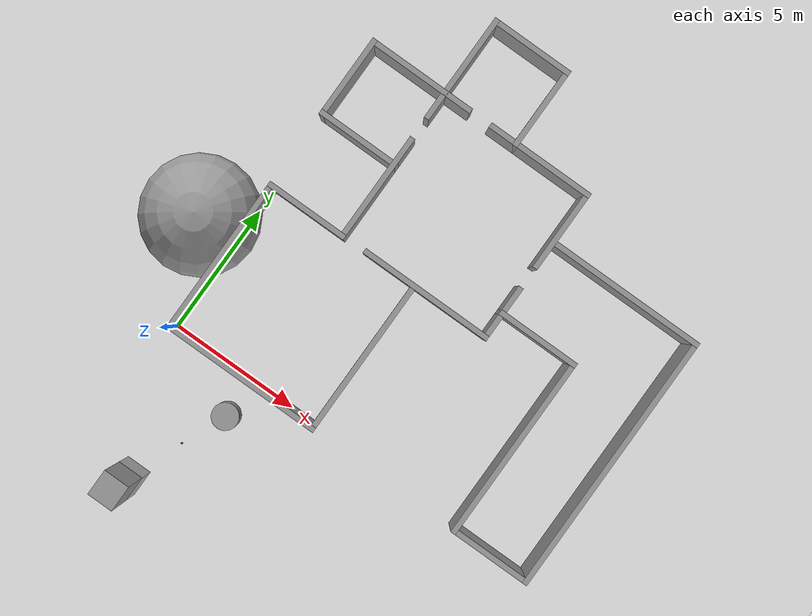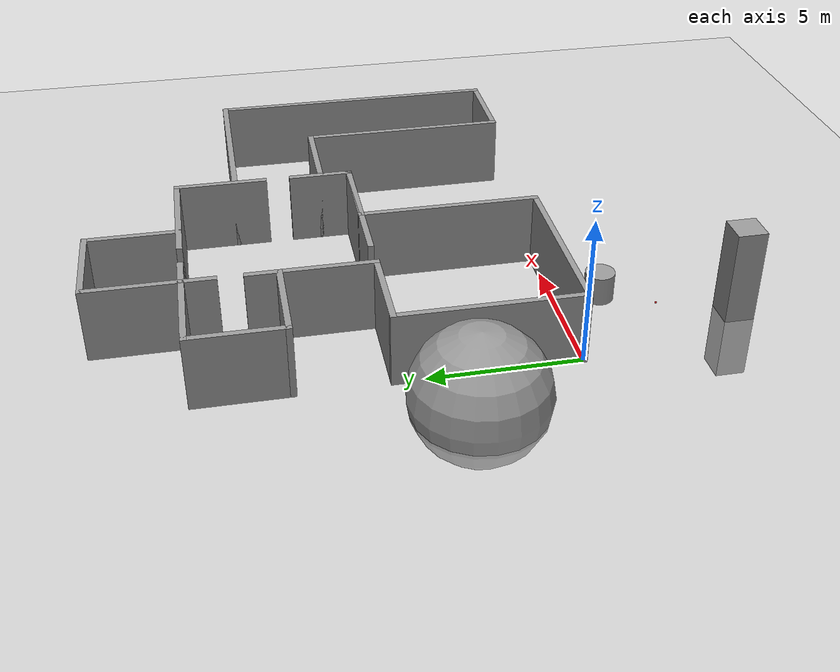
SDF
<sdf version="1.6">
 <world name="default">
  <light name="sun" type="directional">
   <pose>0 0 10 0 -0 0</pose>
   <diffuse>0.8 0.8 0.8 1</diffuse>
   <specular>0.2 0.2 0.2 1</specular>
   <attenuation>
    <range>1000</range>
    <constant>0.9</constant>
    <linear>0.01</linear>
    <quadratic>0.001</quadratic>
   </attenuation>
   <direction>-0.5 0.1 -0.9</direction>
  </light>
  <model name="Floorplan">
   <pose>7.5 7.5 0 0 -0 0</pose>
   <link name="Wall_0">
    <collision name="Wall_0_Collision">
     <geometry><box><size>6.2 0.2 2.5</size></box></geometry>
     <pose>0 0 1.25 0 -0 0</pose>
    </collision>
    <visual name="Wall_0_Visual">
     <pose>0 0 1.25 0 -0 0</pose>
     <geometry><box><size>6.2 0.2 2.5</size></box></geometry>
     <material>
      <script><uri>file://media/materials/scripts/gazebo.material</uri><name>Gazebo/Grey</name></script>
      <ambient>1 1 1 1</ambient>
     </material>
     <meta><layer>0</layer></meta>
    </visual>
    <pose>-4.5 -7.5 0 0 -0 0</pose>
   </link>
   <link name="Wall_10">
    <collision name="Wall_10_Collision">
     <geometry><box><size>3.2 0.2 2.5</size></box></geometry>
     <pose>0 0 1.25 0 -0 0</pose>
    </collision>
    <visual name="Wall_10_Visual">
     <pose>0 0 1.25 0 -0 0</pose>
     <geometry><box><size>3.2 0.2 2.5</size></box></geometry>
     <material>
      <script><uri>file://media/materials/scripts/gazebo.material</uri><name>Gazebo/Grey</name></script>
      <ambient>1 1 1 1</ambient>
     </material>
     <meta><layer>0</layer></meta>
    </visual>
    <pose>-6 -1.5345 0 0 -0 0</pose>
   </link>
   <link name="Wall_12">
    <collision name="Wall_12_Collision">
     <geometry><box><size>4.23452 0.2 2.5</size></box></geometry>
     <pose>0 0 1.25 0 -0 0</pose>
    </collision>
    <visual name="Wall_12_Visual">
     <pose>0 0 1.25 0 -0 0</pose>
     <geometry><box><size>4.23452 0.2 2.5</size></box></geometry>
     <material>
      <script><uri>file://media/materials/scripts/gazebo.material</uri><name>Gazebo/Grey</name></script>
      <ambient>1 1 1 1</ambient>
     </material>
     <meta><layer>0</layer></meta>
    </visual>
    <pose>-4.5 0.482753 0 0 -0 1.5708</pose>
   </link>
   <link name="Wall_14">
    <collision name="Wall_14_Collision">
     <geometry><box><size>3.2 0.2 2.5</size></box></geometry>
     <pose>0 0 1.25 0 -0 0</pose>
    </collision>
    <visual name="Wall_14_Visual">
     <pose>0 0 1.25 0 -0 0</pose>
     <geometry><box><size>3.2 0.2 2.5</size></box></geometry>
     <material>
      <script><uri>file://media/materials/scripts/gazebo.material</uri><name>Gazebo/Grey</name></script>
      <ambient>1 1 1 1</ambient>
     </material>
     <meta><layer>0</layer></meta>
    </visual>
    <pose>-6 1.5 0 0 -0 3.14159</pose>
   </link>
   <link name="Wall_16">
    <collision name="Wall_16_Collision">
     <geometry><box><size>3.2 0.2 2.5</size></box></geometry>
     <pose>0 0 1.25 0 -0 0</pose>
    </collision>
    <visual name="Wall_16_Visual">
     <pose>0 0 1.25 0 -0 0</pose>
     <geometry><box><size>3.2 0.2 2.5</size></box></geometry>
     <material>
      <script><uri>file://media/materials/scripts/gazebo.material</uri><name>Gazebo/Grey</name></script>
      <ambient>1 1 1 1</ambient>
     </material>
     <meta><layer>0</layer></meta>
    </visual>
    <pose>-7.5 3 0 0 -0 1.5708</pose>
   </link>
   <link name="Wall_18">
    <collision name="Wall_18_Collision">
     <geometry><box><size>3.2 0.2 2.5</size></box></geometry>
     <pose>0 0 1.25 0 -0 0</pose>
    </collision>
    <visual name="Wall_18_Visual">
     <pose>0 0 1.25 0 -0 0</pose>
     <geometry><box><size>3.2 0.2 2.5</size></box></geometry>
     <material>
      <script><uri>file://media/materials/scripts/gazebo.material</uri><name>Gazebo/Grey</name></script>
      <ambient>1 1 1 1</ambient>
     </material>
     <meta><layer>0</layer></meta>
    </visual>
    <pose>-6 4.5 0 0 -0 0</pose>
   </link>
   <link name="Wall_2">
    <collision name="Wall_2_Collision">
     <geometry><box><size>6.16551 0.2 2.5</size></box></geometry>
     <pose>0 0 1.25 0 -0 0</pose>
    </collision>
    <visual name="Wall_2_Visual">
     <pose>0 0 1.25 0 -0 0</pose>
     <geometry><box><size>6.16551 0.2 2.5</size></box></geometry>
     <material>
      <script><uri>file://media/materials/scripts/gazebo.material</uri><name>Gazebo/Grey</name></script>
      <ambient>1 1 1 1</ambient>
     </material>
     <meta><layer>0</layer></meta>
    </visual>
    <pose>-7.5 -4.51725 0 0 -0 1.5708</pose>
   </link>
   <link name="Wall_20">
    <collision name="Wall_20_Collision">
     <geometry><box><size>4.2 0.2 2.5</size></box></geometry>
     <pose>0 0 1.25 0 -0 0</pose>
    </collision>
    <visual name="Wall_20_Visual">
     <pose>0 0 1.25 0 -0 0</pose>
     <geometry><box><size>4.2 0.2 2.5</size></box></geometry>
     <material>
      <script><uri>file://media/materials/scripts/gazebo.material</uri><name>Gazebo/Grey</name></script>
      <ambient>1 1 1 1</ambient>
     </material>
     <meta><layer>0</layer></meta>
    </visual>
    <pose>-4.5 5.5 0 0 -0 1.5708</pose>
   </link>
   <link name="Wall_23">
    <collision name="Wall_23_Collision">
     <geometry><box><size>3.2 0.2 2.5</size></box></geometry>
     <pose>0 0 1.25 0 -0 0</pose>
    </collision>
    <visual name="Wall_23_Visual">
     <pose>0 0 1.25 0 -0 0</pose>
     <geometry><box><size>3.2 0.2 2.5</size></box></geometry>
     <material>
      <script><uri>file://media/materials/scripts/gazebo.material</uri><name>Gazebo/Grey</name></script>
      <ambient>1 1 1 1</ambient>
     </material>
     <meta><layer>0</layer></meta>
    </visual>
    <pose>-3 7.5 0 0 -0 0</pose>
   </link>
   <link name="Wall_25">
    <collision name="Wall_25_Collision">
     <geometry><box><size>3.2 0.2 2.5</size></box></geometry>
     <pose>0 0 1.25 0 -0 0</pose>
    </collision>
    <visual name="Wall_25_Visual">
     <pose>0 0 1.25 0 -0 0</pose>
     <geometry><box><size>3.2 0.2 2.5</size></box></geometry>
     <material>
      <script><uri>file://media/materials/scripts/gazebo.material</uri><name>Gazebo/Grey</name></script>
      <ambient>1 1 1 1</ambient>
     </material>
     <meta><layer>0</layer></meta>
    </visual>
    <pose>-1.5 6 0 0 -0 -1.5708</pose>
   </link>
   <link name="Wall_27">
    <collision name="Wall_27_Collision">
     <geometry><box><size>1.2 0.2 2.5</size></box></geometry>
     <pose>0 0 1.25 0 -0 0</pose>
    </collision>
    <visual name="Wall_27_Visual">
     <pose>0 0 1.25 0 -0 0</pose>
     <geometry><box><size>1.2 0.2 2.5</size></box></geometry>
     <material>
      <script><uri>file://media/materials/scripts/gazebo.material</uri><name>Gazebo/Grey</name></script>
      <ambient>1 1 1 1</ambient>
     </material>
     <meta><layer>0</layer></meta>
    </visual>
    <pose>-4 4.5 0 0 -0 0</pose>
   </link>
   <link name="Wall_29">
    <collision name="Wall_29_Collision">
     <geometry><box><size>4.2 0.2 2.5</size></box></geometry>
     <pose>0 0 1.25 0 -0 0</pose>
    </collision>
    <visual name="Wall_29_Visual">
     <pose>0 0 1.25 0 -0 0</pose>
     <geometry><box><size>4.2 0.2 2.5</size></box></geometry>
     <material>
      <script><uri>file://media/materials/scripts/gazebo.material</uri><name>Gazebo/Grey</name></script>
      <ambient>1 1 1 1</ambient>
     </material>
     <meta><layer>0</layer></meta>
    </visual>
    <pose>-0.5 4.5 0 0 -0 0</pose>
   </link>
   <link name="Wall_31">
    <collision name="Wall_31_Collision">
     <geometry><box><size>5.2 0.2 2.5</size></box></geometry>
     <pose>0 0 1.25 0 -0 0</pose>
    </collision>
    <visual name="Wall_31_Visual">
     <pose>0 0 1.25 0 -0 0</pose>
     <geometry><box><size>5.2 0.2 2.5</size></box></geometry>
     <material>
      <script><uri>file://media/materials/scripts/gazebo.material</uri><name>Gazebo/Grey</name></script>
      <ambient>1 1 1 1</ambient>
     </material>
     <meta><layer>0</layer></meta>
    </visual>
    <pose>-1 -1.5 0 0 -0 0</pose>
   </link>
   <link name="Wall_34">
    <collision name="Wall_34_Collision">
     <geometry><box><size>3.2 0.2 2.5</size></box></geometry>
     <pose>0 0 1.25 0 -0 0</pose>
    </collision>
    <visual name="Wall_34_Visual">
     <pose>0 0 1.25 0 -0 0</pose>
     <geometry><box><size>3.2 0.2 2.5</size></box></geometry>
     <material>
      <script><uri>file://media/materials/scripts/gazebo.material</uri><name>Gazebo/Grey</name></script>
      <ambient>1 1 1 1</ambient>
     </material>
     <meta><layer>0</layer></meta>
    </visual>
    <pose>3 -0.499997 0 0 -0 0</pose>
   </link>
   <link name="Wall_36">
    <collision name="Wall_36_Collision">
     <geometry><box><size>3.2 0.2 2.5</size></box></geometry>
     <pose>0 0 1.25 0 -0 0</pose>
    </collision>
    <visual name="Wall_36_Visual">
     <pose>0 0 1.25 0 -0 0</pose>
     <geometry><box><size>3.2 0.2 2.5</size></box></geometry>
     <material>
      <script><uri>file://media/materials/scripts/gazebo.material</uri><name>Gazebo/Grey</name></script>
      <ambient>1 1 1 1</ambient>
     </material>
     <meta><layer>0</layer></meta>
    </visual>
    <pose>1.5 3 0 0 -0 -1.5708</pose>
   </link>
   <link name="Wall_38">
    <collision name="Wall_38_Collision">
     <geometry><box><size>6.2 0.2 2.5</size></box></geometry>
     <pose>0 0 1.25 0 -0 0</pose>
    </collision>
    <visual name="Wall_38_Visual">
     <pose>0 0 1.25 0 -0 0</pose>
     <geometry><box><size>6.2 0.2 2.5</size></box></geometry>
     <material>
      <script><uri>file://media/materials/scripts/gazebo.material</uri><name>Gazebo/Grey</name></script>
      <ambient>1 1 1 1</ambient>
     </material>
     <meta><layer>0</layer></meta>
    </visual>
    <pose>4.5 2.5 0 0 -0 0</pose>
   </link>
   <link name="Wall_40">
    <collision name="Wall_40_Collision">
     <geometry><box><size>7.2 0.2 2.5</size></box></geometry>
     <pose>0 0 1.25 0 -0 0</pose>
    </collision>
    <visual name="Wall_40_Visual">
     <pose>0 0 1.25 0 -0 0</pose>
     <geometry><box><size>7.2 0.2 2.5</size></box></geometry>
     <material>
      <script><uri>file://media/materials/scripts/gazebo.material</uri><name>Gazebo/Grey</name></script>
      <ambient>1 1 1 1</ambient>
     </material>
     <meta><layer>0</layer></meta>
    </visual>
    <pose>4.5 -4 0 0 -0 -1.5708</pose>
   </link>
   <link name="Wall_42">
    <collision name="Wall_42_Collision">
     <geometry><box><size>10.2 0.2 2.5</size></box></geometry>
     <pose>0 0 1.25 0 -0 0</pose>
    </collision>
    <visual name="Wall_42_Visual">
     <pose>0 0 1.25 0 -0 0</pose>
     <geometry><box><size>10.2 0.2 2.5</size></box></geometry>
     <material>
      <script><uri>file://media/materials/scripts/gazebo.material</uri><name>Gazebo/Grey</name></script>
      <ambient>1 1 1 1</ambient>
     </material>
     <meta><layer>0</layer></meta>
    </visual>
    <pose>7.5 -2.5 0 0 -0 -1.5708</pose>
   </link>
   <link name="Wall_44">
    <collision name="Wall_44_Collision">
     <geometry><box><size>3.2 0.2 2.5</size></box></geometry>
     <pose>0 0 1.25 0 -0 0</pose>
    </collision>
    <visual name="Wall_44_Visual">
     <pose>0 0 1.25 0 -0 0</pose>
     <geometry><box><size>3.2 0.2 2.5</size></box></geometry>
     <material>
      <script><uri>file://media/materials/scripts/gazebo.material</uri><name>Gazebo/Grey</name></script>
      <ambient>1 1 1 1</ambient>
     </material>
     <meta><layer>0</layer></meta>
    </visual>
    <pose>6 -7.5 0 0 -0 0</pose>
   </link>
   <link name="Wall_6">
    <collision name="Wall_6_Collision">
     <geometry><box><size>6.2 0.2 2.5</size></box></geometry>
     <pose>0 0 1.25 0 -0 0</pose>
    </collision>
    <visual name="Wall_6_Visual">
     <pose>0 0 1.25 0 -0 0</pose>
     <geometry><box><size>6.2 0.2 2.5</size></box></geometry>
     <material>
      <script><uri>file://media/materials/scripts/gazebo.material</uri><name>Gazebo/Grey</name></script>
      <ambient>1 1 1 1</ambient>
     </material>
     <meta><layer>0</layer></meta>
    </visual>
    <pose>-1.5 -4.5 0 0 -0 1.5708</pose>
   </link>
   <link name="Wall_7">
    <collision name="Wall_7_Collision">
     <geometry><box><size>3.2 0.2 2.5</size></box></geometry>
     <pose>0 0 1.25 0 -0 0</pose>
    </collision>
    <visual name="Wall_7_Visual">
     <pose>0 0 1.25 0 -0 0</pose>
     <geometry><box><size>3.2 0.2 2.5</size></box></geometry>
     <material>
      <script><uri>file://media/materials/scripts/gazebo.material</uri><name>Gazebo/Grey</name></script>
      <ambient>1 1 1 1</ambient>
     </material>
     <meta><layer>0</layer></meta>
    </visual>
    <pose>0 -1.5 0 0 -0 0</pose>
   </link>
   <link name="Wall_8">
    <collision name="Wall_8_Collision">
     <geometry><box><size>2.2 0.2 2.5</size></box></geometry>
     <pose>0 0 1.25 0 -0 0</pose>
    </collision>
    <visual name="Wall_8_Visual">
     <pose>0 0 1.25 0 -0 0</pose>
     <geometry><box><size>2.2 0.2 2.5</size></box></geometry>
     <material>
      <script><uri>file://media/materials/scripts/gazebo.material</uri><name>Gazebo/Grey</name></script>
      <ambient>1 1 1 1</ambient>
     </material>
     <meta><layer>0</layer></meta>
    </visual>
    <pose>1.5 -0.499997 0 0 -0 1.5708</pose>
   </link>
   <static>1</static>
  </model>
  <model name="ground_plane">
   <static>1</static>
   <link name="link">
    <collision name="collision">
     <geometry><plane><normal>0 0 1</normal><size>100 100</size></plane></geometry>
     <surface>
      <contact><collide_bitmask>65535</collide_bitmask></contact>
      <friction><ode><mu>100</mu><mu2>50</mu2></ode></friction>
     </surface>
    </collision>
    <visual name="visual">
     <cast_shadows>0</cast_shadows>
     <geometry><plane><normal>0 0 1</normal><size>100 100</size></plane></geometry>
     <material>
      <script><uri>file://media/materials/scripts/gazebo.material</uri><name>Gazebo/Grey</name></script>
     </material>
    </visual>
   </link>
  </model>
  <gravity>0 0 -9.8</gravity>
  <magnetic_field>6e-06 2.3e-05 -4.2e-05</magnetic_field>
  <atmosphere type="adiabatic"/>
  <physics name="default_physics" default="0" type="ode">
   <max_step_size>0.001</max_step_size>
   <real_time_factor>1</real_time_factor>
   <real_time_update_rate>1000</real_time_update_rate>
  </physics>
  <scene><ambient>0.4 0.4 0.4 1</ambient><background>0.7 0.7 0.7 1</background><shadows>1</shadows></scene>
  <audio><device>default</device></audio>
  <spherical_coordinates>
   <surface_model>EARTH_WGS84</surface_model>
   <latitude_deg>0</latitude_deg>
   <longitude_deg>0</longitude_deg>
   <elevation>0</elevation>
   <heading_deg>0</heading_deg>
  </spherical_coordinates>
  <model name="unit_box">
   <pose>1.61015 -5.65028 0.5 -0 -0 -0</pose>
   <link name="link">
    <inertial>
     <mass>1</mass>
     <inertia>
      <ixx>0.166667</ixx>
      <ixy>0</ixy>
      <ixz>0</ixz>
      <iyy>0.166667</iyy>
      <iyz>0</iyz>
      <izz>0.166667</izz>
     </inertia>
    </inertial>
    <collision name="collision"><geometry><box><size>1 1 5.44559</size></box></geometry></collision>
    <visual name="visual">
     <geometry><box><size>1 1 5.44559</size></box></geometry>
     <material>
      <script><name>Gazebo/Grey</name><uri>file://media/materials/scripts/gazebo.material</uri></script>
     </material>
    </visual>
   </link>
  </model>
  <model name="unit_sphere">
   <pose>-1.60256 3.67317 0.5 0 -0 0</pose>
   <link name="link">
    <inertial>
     <mass>1</mass>
     <inertia><ixx>0.1</ixx><ixy>0</ixy><ixz>0</ixz><iyy>0.1</iyy><iyz>0</iyz><izz>0.1</izz></inertia>
    </inertial>
    <collision name="collision"><geometry><sphere><radius>2.20979</radius></sphere></geometry></collision>
    <visual name="visual">
     <geometry><sphere><radius>2.20979</radius></sphere></geometry>
     <material>
      <script><name>Gazebo/Grey</name><uri>file://media/materials/scripts/gazebo.material</uri></script>
     </material>
    </visual>
   </link>
  </model>
  <model name="unit_cylinder">
   <pose>3.27929 -1.54812 0.499992 -3e-06 4e-06 0</pose>
   <link name="link">
    <inertial>
     <mass>1</mass>
     <inertia><ixx>0.145833</ixx><ixy>0</ixy><ixz>0</ixz><iyy>0.145833</iyy><iyz>0</iyz><izz>0.125</izz></inertia>
    </inertial>
    <collision name="collision">
     <geometry><cylinder><radius>0.5</radius><length>1</length></cylinder></geometry>
    </collision>
    <visual name="visual">
     <geometry><cylinder><radius>0.5</radius><length>1</length></cylinder></geometry>
     <material>
      <script><name>Gazebo/Grey</name><uri>file://media/materials/scripts/gazebo.material</uri></script>
     </material>
    </visual>
   </link>
  </model>
  <model name="cricket_ball">
   <link name="link">
    <pose>0 0 0.0375 0 -0 0</pose>
    <inertial>
     <mass>0.1467</mass>
     <inertia>
      <ixx>8.25187e-05</ixx>
      <ixy>0</ixy>
      <ixz>0</ixz>
      <iyy>8.25187e-05</iyy>
      <iyz>0</iyz>
      <izz>8.25187e-05</izz>
     </inertia>
    </inertial>
    <collision name="collision">
     <geometry><sphere><radius>0.0375</radius></sphere></geometry>
     <surface>
      <contact>
       <poissons_ratio>0.347</poissons_ratio>
       <elastic_modulus>8.8e+09</elastic_modulus>
       <ode><kp>100000</kp><kd>100</kd><max_vel>100</max_vel><min_depth>0.001</min_depth></ode>
      </contact>
      <friction>
       <torsional>
        <coefficient>1</coefficient>
        <use_patch_radius>0</use_patch_radius>
        <surface_radius>0.01</surface_radius>
       </torsional>
      </friction>
     </surface>
    </collision>
    <visual name="visual">
     <geometry><sphere><radius>0.0375</radius></sphere></geometry>
     <material>
      <script><uri>file://media/materials/scripts/gazebo.material</uri><name>Gazebo/Red</name></script>
     </material>
    </visual>
    <velocity_decay><linear>0</linear><angular>0.005</angular></velocity_decay>
   </link>
   <pose>2.54078 -3.31318 -0.001014 0 -0 0</pose>
  </model>
 </world>
</sdf>
